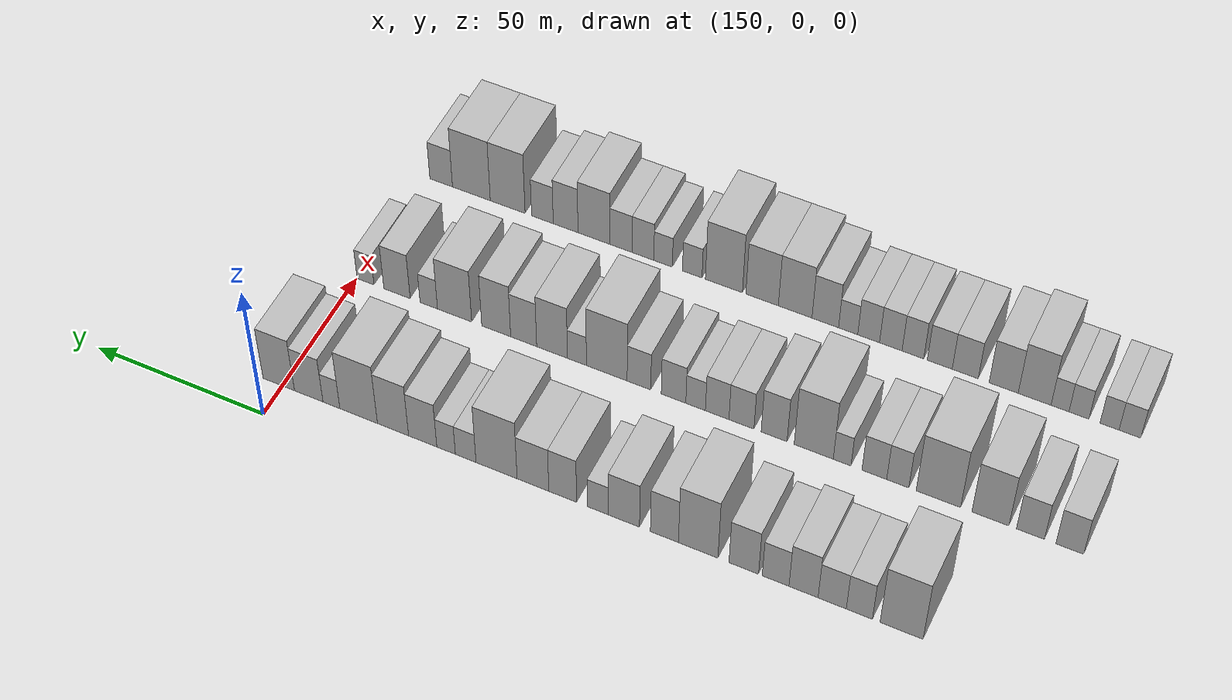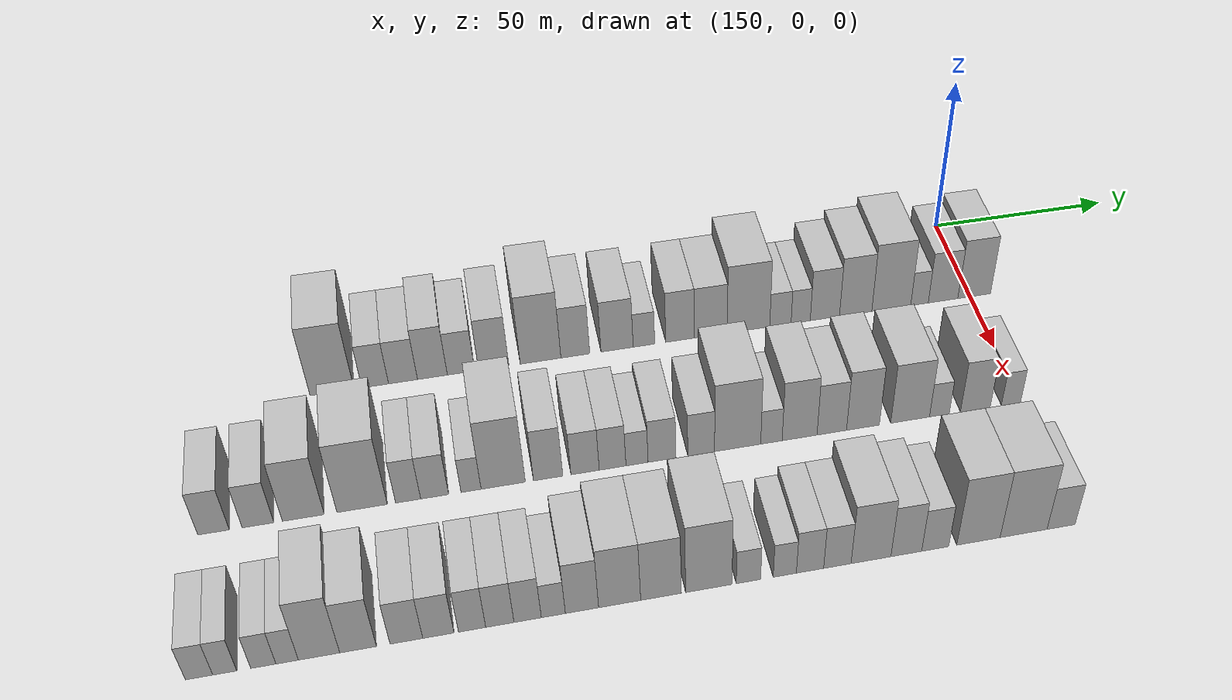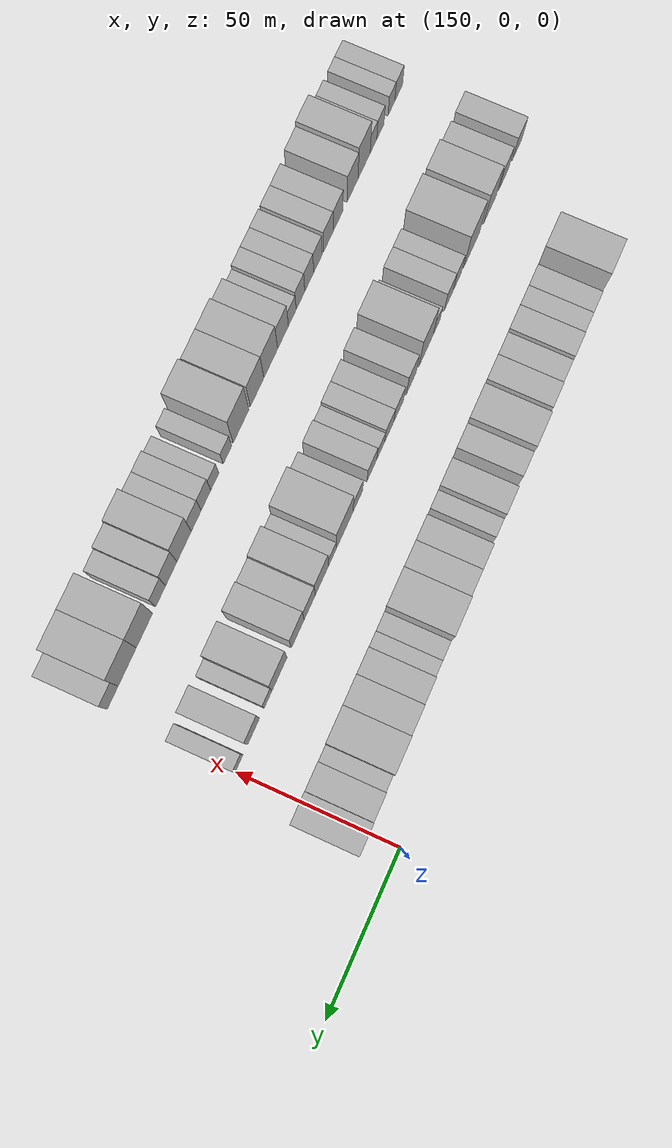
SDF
<sdf version="1.6">
 <world name="default">
  <model name="building_453">
   <static>1</static>
   <pose>170.0000 -172.9521 0 0.000000 0.000000 0.000000</pose>
   <link name="link">
    <pose>0 0 12.00 0 0 0</pose>
    <collision name="collision"><geometry><box><size>20.0000 11.2089 24.0000</size></box></geometry></collision>
    <visual name="visual">
     <cast_shadows>0</cast_shadows>
     <geometry><box><size>20.0000 11.2089 24.0000</size></box></geometry>
     <material>
      <script>
       <uri>model://HANNAS_wall/materials/scripts</uri>
       <uri>model://HANNAS_wall/materials/textures</uri>
       <name>vrc/HANNAS_wall</name>
      </script>
     </material>
    </visual>
   </link>
  </model>
  <model name="building_454">
   <static>1</static>
   <pose>170.0000 -161.9113 0 0.000000 0.000000 0.000000</pose>
   <link name="link">
    <pose>0 0 7.50 0 0 0</pose>
    <collision name="collision"><geometry><box><size>20.0000 6.8727 15.0000</size></box></geometry></collision>
    <visual name="visual">
     <cast_shadows>0</cast_shadows>
     <geometry><box><size>20.0000 6.8727 15.0000</size></box></geometry>
     <material>
      <script>
       <uri>model://HANNAS_wall/materials/scripts</uri>
       <uri>model://HANNAS_wall/materials/textures</uri>
       <name>vrc/HANNAS_wall</name>
      </script>
     </material>
    </visual>
   </link>
  </model>
  <model name="building_455">
   <static>1</static>
   <pose>170.0000 -154.7387 0 0.000000 0.000000 0.000000</pose>
   <link name="link">
    <pose>0 0 7.50 0 0 0</pose>
    <collision name="collision"><geometry><box><size>20.0000 7.4725 15.0000</size></box></geometry></collision>
    <visual name="visual">
     <cast_shadows>0</cast_shadows>
     <geometry><box><size>20.0000 7.4725 15.0000</size></box></geometry>
     <material>
      <script>
       <uri>model://HANNAS_wall/materials/scripts</uri>
       <uri>model://HANNAS_wall/materials/textures</uri>
       <name>vrc/HANNAS_wall</name>
      </script>
     </material>
    </visual>
   </link>
  </model>
  <model name="building_456">
   <static>1</static>
   <pose>170.0000 -147.1284 0 0.000000 0.000000 0.000000</pose>
   <link name="link">
    <pose>0 0 9.00 0 0 0</pose>
    <collision name="collision"><geometry><box><size>20.0000 7.7482 18.0000</size></box></geometry></collision>
    <visual name="visual">
     <cast_shadows>0</cast_shadows>
     <geometry><box><size>20.0000 7.7482 18.0000</size></box></geometry>
     <material>
      <script>
       <uri>model://HANNAS_wall/materials/scripts</uri>
       <uri>model://HANNAS_wall/materials/textures</uri>
       <name>vrc/HANNAS_wall</name>
      </script>
     </material>
    </visual>
   </link>
  </model>
  <model name="building_457">
   <static>1</static>
   <pose>170.0000 -139.6732 0 0.000000 0.000000 0.000000</pose>
   <link name="link">
    <pose>0 0 7.50 0 0 0</pose>
    <collision name="collision"><geometry><box><size>20.0000 7.1622 15.0000</size></box></geometry></collision>
    <visual name="visual">
     <cast_shadows>0</cast_shadows>
     <geometry><box><size>20.0000 7.1622 15.0000</size></box></geometry>
     <material>
      <script>
       <uri>model://HANNAS_wall/materials/scripts</uri>
       <uri>model://HANNAS_wall/materials/textures</uri>
       <name>vrc/HANNAS_wall</name>
      </script>
     </material>
    </visual>
   </link>
  </model>
  <model name="building_458">
   <static>1</static>
   <pose>170.0000 -131.1093 0 0.000000 0.000000 0.000000</pose>
   <link name="link">
    <pose>0 0 9.00 0 0 0</pose>
    <collision name="collision"><geometry><box><size>20.0000 7.9656 18.0000</size></box></geometry></collision>
    <visual name="visual">
     <cast_shadows>0</cast_shadows>
     <geometry><box><size>20.0000 7.9656 18.0000</size></box></geometry>
     <material>
      <script>
       <uri>model://HANNAS_wall/materials/scripts</uri>
       <uri>model://HANNAS_wall/materials/textures</uri>
       <name>vrc/HANNAS_wall</name>
      </script>
     </material>
    </visual>
   </link>
  </model>
  <model name="building_459">
   <static>1</static>
   <pose>170.0000 -118.7372 0 0.000000 0.000000 0.000000</pose>
   <link name="link">
    <pose>0 0 12.00 0 0 0</pose>
    <collision name="collision"><geometry><box><size>20.0000 10.7786 24.0000</size></box></geometry></collision>
    <visual name="visual">
     <cast_shadows>0</cast_shadows>
     <geometry><box><size>20.0000 10.7786 24.0000</size></box></geometry>
     <material>
      <script>
       <uri>model://HANNAS_wall/materials/scripts</uri>
       <uri>model://HANNAS_wall/materials/textures</uri>
       <name>vrc/HANNAS_wall</name>
      </script>
     </material>
    </visual>
   </link>
  </model>
  <model name="building_460">
   <static>1</static>
   <pose>170.0000 -109.4995 0 0.000000 0.000000 0.000000</pose>
   <link name="link">
    <pose>0 0 9.00 0 0 0</pose>
    <collision name="collision"><geometry><box><size>20.0000 7.6968 18.0000</size></box></geometry></collision>
    <visual name="visual">
     <cast_shadows>0</cast_shadows>
     <geometry><box><size>20.0000 7.6968 18.0000</size></box></geometry>
     <material>
      <script>
       <uri>model://HANNAS_wall/materials/scripts</uri>
       <uri>model://HANNAS_wall/materials/textures</uri>
       <name>vrc/HANNAS_wall</name>
      </script>
     </material>
    </visual>
   </link>
  </model>
  <model name="building_461">
   <static>1</static>
   <pose>170.0000 -98.3175 0 0.000000 0.000000 0.000000</pose>
   <link name="link">
    <pose>0 0 9.00 0 0 0</pose>
    <collision name="collision"><geometry><box><size>20.0000 8.6673 18.0000</size></box></geometry></collision>
    <visual name="visual">
     <cast_shadows>0</cast_shadows>
     <geometry><box><size>20.0000 8.6673 18.0000</size></box></geometry>
     <material>
      <script>
       <uri>model://HANNAS_wall/materials/scripts</uri>
       <uri>model://HANNAS_wall/materials/textures</uri>
       <name>vrc/HANNAS_wall</name>
      </script>
     </material>
    </visual>
   </link>
  </model>
  <model name="building_462">
   <static>1</static>
   <pose>170.0000 -91.0740 0 0.000000 0.000000 0.000000</pose>
   <link name="link">
    <pose>0 0 6.00 0 0 0</pose>
    <collision name="collision"><geometry><box><size>20.0000 5.8197 12.0000</size></box></geometry></collision>
    <visual name="visual">
     <cast_shadows>0</cast_shadows>
     <geometry><box><size>20.0000 5.8197 12.0000</size></box></geometry>
     <material>
      <script>
       <uri>model://HANNAS_wall/materials/scripts</uri>
       <uri>model://HANNAS_wall/materials/textures</uri>
       <name>vrc/HANNAS_wall</name>
      </script>
     </material>
    </visual>
   </link>
  </model>
  <model name="building_463">
   <static>1</static>
   <pose>170.0000 -81.2610 0 0.000000 0.000000 0.000000</pose>
   <link name="link">
    <pose>0 0 9.00 0 0 0</pose>
    <collision name="collision"><geometry><box><size>20.0000 7.8064 18.0000</size></box></geometry></collision>
    <visual name="visual">
     <cast_shadows>0</cast_shadows>
     <geometry><box><size>20.0000 7.8064 18.0000</size></box></geometry>
     <material>
      <script>
       <uri>model://HANNAS_wall/materials/scripts</uri>
       <uri>model://HANNAS_wall/materials/textures</uri>
       <name>vrc/HANNAS_wall</name>
      </script>
     </material>
    </visual>
   </link>
  </model>
  <model name="building_464">
   <static>1</static>
   <pose>170.0000 -72.8683 0 0.000000 0.000000 0.000000</pose>
   <link name="link">
    <pose>0 0 9.00 0 0 0</pose>
    <collision name="collision"><geometry><box><size>20.0000 8.9790 18.0000</size></box></geometry></collision>
    <visual name="visual">
     <cast_shadows>0</cast_shadows>
     <geometry><box><size>20.0000 8.9790 18.0000</size></box></geometry>
     <material>
      <script>
       <uri>model://HANNAS_wall/materials/scripts</uri>
       <uri>model://HANNAS_wall/materials/textures</uri>
       <name>vrc/HANNAS_wall</name>
      </script>
     </material>
    </visual>
   </link>
  </model>
  <model name="building_465">
   <static>1</static>
   <pose>170.0000 -62.5123 0 0.000000 0.000000 0.000000</pose>
   <link name="link">
    <pose>0 0 12.00 0 0 0</pose>
    <collision name="collision"><geometry><box><size>20.0000 11.7331 24.0000</size></box></geometry></collision>
    <visual name="visual">
     <cast_shadows>0</cast_shadows>
     <geometry><box><size>20.0000 11.7331 24.0000</size></box></geometry>
     <material>
      <script>
       <uri>model://HANNAS_wall/materials/scripts</uri>
       <uri>model://HANNAS_wall/materials/textures</uri>
       <name>vrc/HANNAS_wall</name>
      </script>
     </material>
    </visual>
   </link>
  </model>
  <model name="building_466">
   <static>1</static>
   <pose>170.0000 -53.6849 0 0.000000 0.000000 0.000000</pose>
   <link name="link">
    <pose>0 0 6.00 0 0 0</pose>
    <collision name="collision"><geometry><box><size>20.0000 5.9217 12.0000</size></box></geometry></collision>
    <visual name="visual">
     <cast_shadows>0</cast_shadows>
     <geometry><box><size>20.0000 5.9217 12.0000</size></box></geometry>
     <material>
      <script>
       <uri>model://HANNAS_wall/materials/scripts</uri>
       <uri>model://HANNAS_wall/materials/textures</uri>
       <name>vrc/HANNAS_wall</name>
      </script>
     </material>
    </visual>
   </link>
  </model>
  <model name="building_467">
   <static>1</static>
   <pose>170.0000 -48.0506 0 0.000000 0.000000 0.000000</pose>
   <link name="link">
    <pose>0 0 6.00 0 0 0</pose>
    <collision name="collision"><geometry><box><size>20.0000 5.3470 12.0000</size></box></geometry></collision>
    <visual name="visual">
     <cast_shadows>0</cast_shadows>
     <geometry><box><size>20.0000 5.3470 12.0000</size></box></geometry>
     <material>
      <script>
       <uri>model://HANNAS_wall/materials/scripts</uri>
       <uri>model://HANNAS_wall/materials/textures</uri>
       <name>vrc/HANNAS_wall</name>
      </script>
     </material>
    </visual>
   </link>
  </model>
  <model name="building_468">
   <static>1</static>
   <pose>170.0000 -41.2796 0 0.000000 0.000000 0.000000</pose>
   <link name="link">
    <pose>0 0 9.00 0 0 0</pose>
    <collision name="collision"><geometry><box><size>20.0000 8.1951 18.0000</size></box></geometry></collision>
    <visual name="visual">
     <cast_shadows>0</cast_shadows>
     <geometry><box><size>20.0000 8.1951 18.0000</size></box></geometry>
     <material>
      <script>
       <uri>model://HANNAS_wall/materials/scripts</uri>
       <uri>model://HANNAS_wall/materials/textures</uri>
       <name>vrc/HANNAS_wall</name>
      </script>
     </material>
    </visual>
   </link>
  </model>
  <model name="building_469">
   <static>1</static>
   <pose>170.0000 -32.6283 0 0.000000 0.000000 0.000000</pose>
   <link name="link">
    <pose>0 0 10.50 0 0 0</pose>
    <collision name="collision"><geometry><box><size>20.0000 9.1075 21.0000</size></box></geometry></collision>
    <visual name="visual">
     <cast_shadows>0</cast_shadows>
     <geometry><box><size>20.0000 9.1075 21.0000</size></box></geometry>
     <material>
      <script>
       <uri>model://HANNAS_wall/materials/scripts</uri>
       <uri>model://HANNAS_wall/materials/textures</uri>
       <name>vrc/HANNAS_wall</name>
      </script>
     </material>
    </visual>
   </link>
  </model>
  <model name="building_470">
   <static>1</static>
   <pose>170.0000 -22.5432 0 0.000000 0.000000 0.000000</pose>
   <link name="link">
    <pose>0 0 12.00 0 0 0</pose>
    <collision name="collision"><geometry><box><size>20.0000 11.0627 24.0000</size></box></geometry></collision>
    <visual name="visual">
     <cast_shadows>0</cast_shadows>
     <geometry><box><size>20.0000 11.0627 24.0000</size></box></geometry>
     <material>
      <script>
       <uri>model://HANNAS_wall/materials/scripts</uri>
       <uri>model://HANNAS_wall/materials/textures</uri>
       <name>vrc/HANNAS_wall</name>
      </script>
     </material>
    </visual>
   </link>
  </model>
  <model name="building_471">
   <static>1</static>
   <pose>170.0000 -14.5097 0 0.000000 0.000000 0.000000</pose>
   <link name="link">
    <pose>0 0 6.00 0 0 0</pose>
    <collision name="collision"><geometry><box><size>20.0000 5.0042 12.0000</size></box></geometry></collision>
    <visual name="visual">
     <cast_shadows>0</cast_shadows>
     <geometry><box><size>20.0000 5.0042 12.0000</size></box></geometry>
     <material>
      <script>
       <uri>model://HANNAS_wall/materials/scripts</uri>
       <uri>model://HANNAS_wall/materials/textures</uri>
       <name>vrc/HANNAS_wall</name>
      </script>
     </material>
    </visual>
   </link>
  </model>
  <model name="building_472">
   <static>1</static>
   <pose>170.0000 -7.7640 0 0.000000 0.000000 0.000000</pose>
   <link name="link">
    <pose>0 0 9.00 0 0 0</pose>
    <collision name="collision"><geometry><box><size>20.0000 8.4873 18.0000</size></box></geometry></collision>
    <visual name="visual">
     <cast_shadows>0</cast_shadows>
     <geometry><box><size>20.0000 8.4873 18.0000</size></box></geometry>
     <material>
      <script>
       <uri>model://HANNAS_wall/materials/scripts</uri>
       <uri>model://HANNAS_wall/materials/textures</uri>
       <name>vrc/HANNAS_wall</name>
      </script>
     </material>
    </visual>
   </link>
  </model>
  <model name="building_473">
   <static>1</static>
   <pose>170.0000 1.1938 0 0.000000 0.000000 0.000000</pose>
   <link name="link">
    <pose>0 0 10.50 0 0 0</pose>
    <collision name="collision"><geometry><box><size>20.0000 9.4282 21.0000</size></box></geometry></collision>
    <visual name="visual">
     <cast_shadows>0</cast_shadows>
     <geometry><box><size>20.0000 9.4282 21.0000</size></box></geometry>
     <material>
      <script>
       <uri>model://HANNAS_wall/materials/scripts</uri>
       <uri>model://HANNAS_wall/materials/textures</uri>
       <name>vrc/HANNAS_wall</name>
      </script>
     </material>
    </visual>
   </link>
  </model>
  <model name="building_594">
   <static>1</static>
   <pose>210.0000 -202.1184 0 0.000000 0.000000 0.000000</pose>
   <link name="link">
    <pose>0 0 7.50 0 0 0</pose>
    <collision name="collision"><geometry><box><size>20.0000 7.3005 15.0000</size></box></geometry></collision>
    <visual name="visual">
     <cast_shadows>0</cast_shadows>
     <geometry><box><size>20.0000 7.3005 15.0000</size></box></geometry>
     <material>
      <script>
       <uri>model://HANNAS_wall/materials/scripts</uri>
       <uri>model://HANNAS_wall/materials/textures</uri>
       <name>vrc/HANNAS_wall</name>
      </script>
     </material>
    </visual>
   </link>
  </model>
  <model name="building_595">
   <static>1</static>
   <pose>210.0000 -191.7721 0 0.000000 0.000000 0.000000</pose>
   <link name="link">
    <pose>0 0 7.50 0 0 0</pose>
    <collision name="collision"><geometry><box><size>20.0000 7.3922 15.0000</size></box></geometry></collision>
    <visual name="visual">
     <cast_shadows>0</cast_shadows>
     <geometry><box><size>20.0000 7.3922 15.0000</size></box></geometry>
     <material>
      <script>
       <uri>model://HANNAS_wall/materials/scripts</uri>
       <uri>model://HANNAS_wall/materials/textures</uri>
       <name>vrc/HANNAS_wall</name>
      </script>
     </material>
    </visual>
   </link>
  </model>
  <model name="building_596">
   <static>1</static>
   <pose>210.0000 -181.1423 0 0.000000 0.000000 0.000000</pose>
   <link name="link">
    <pose>0 0 10.50 0 0 0</pose>
    <collision name="collision"><geometry><box><size>20.0000 9.8674 21.0000</size></box></geometry></collision>
    <visual name="visual">
     <cast_shadows>0</cast_shadows>
     <geometry><box><size>20.0000 9.8674 21.0000</size></box></geometry>
     <material>
      <script>
       <uri>model://HANNAS_wall/materials/scripts</uri>
       <uri>model://HANNAS_wall/materials/textures</uri>
       <name>vrc/HANNAS_wall</name>
      </script>
     </material>
    </visual>
   </link>
  </model>
  <model name="building_597">
   <static>1</static>
   <pose>210.0000 -167.2183 0 0.000000 0.000000 0.000000</pose>
   <link name="link">
    <pose>0 0 12.00 0 0 0</pose>
    <collision name="collision"><geometry><box><size>20.0000 11.9806 24.0000</size></box></geometry></collision>
    <visual name="visual">
     <cast_shadows>0</cast_shadows>
     <geometry><box><size>20.0000 11.9806 24.0000</size></box></geometry>
     <material>
      <script>
       <uri>model://HANNAS_wall/materials/scripts</uri>
       <uri>model://HANNAS_wall/materials/textures</uri>
       <name>vrc/HANNAS_wall</name>
      </script>
     </material>
    </visual>
   </link>
  </model>
  <model name="building_598">
   <static>1</static>
   <pose>210.0000 -156.2194 0 0.000000 0.000000 0.000000</pose>
   <link name="link">
    <pose>0 0 7.50 0 0 0</pose>
    <collision name="collision"><geometry><box><size>20.0000 6.0172 15.0000</size></box></geometry></collision>
    <visual name="visual">
     <cast_shadows>0</cast_shadows>
     <geometry><box><size>20.0000 6.0172 15.0000</size></box></geometry>
     <material>
      <script>
       <uri>model://HANNAS_wall/materials/scripts</uri>
       <uri>model://HANNAS_wall/materials/textures</uri>
       <name>vrc/HANNAS_wall</name>
      </script>
     </material>
    </visual>
   </link>
  </model>
  <model name="building_599">
   <static>1</static>
   <pose>210.0000 -149.8347 0 0.000000 0.000000 0.000000</pose>
   <link name="link">
    <pose>0 0 7.50 0 0 0</pose>
    <collision name="collision"><geometry><box><size>20.0000 6.7522 15.0000</size></box></geometry></collision>
    <visual name="visual">
     <cast_shadows>0</cast_shadows>
     <geometry><box><size>20.0000 6.7522 15.0000</size></box></geometry>
     <material>
      <script>
       <uri>model://HANNAS_wall/materials/scripts</uri>
       <uri>model://HANNAS_wall/materials/textures</uri>
       <name>vrc/HANNAS_wall</name>
      </script>
     </material>
    </visual>
   </link>
  </model>
  <model name="building_600">
   <static>1</static>
   <pose>210.0000 -141.0162 0 0.000000 0.000000 0.000000</pose>
   <link name="link">
    <pose>0 0 6.00 0 0 0</pose>
    <collision name="collision"><geometry><box><size>20.0000 4.8847 12.0000</size></box></geometry></collision>
    <visual name="visual">
     <cast_shadows>0</cast_shadows>
     <geometry><box><size>20.0000 4.8847 12.0000</size></box></geometry>
     <material>
      <script>
       <uri>model://HANNAS_wall/materials/scripts</uri>
       <uri>model://HANNAS_wall/materials/textures</uri>
       <name>vrc/HANNAS_wall</name>
      </script>
     </material>
    </visual>
   </link>
  </model>
  <model name="building_601">
   <static>1</static>
   <pose>210.0000 -133.1641 0 0.000000 0.000000 0.000000</pose>
   <link name="link">
    <pose>0 0 12.00 0 0 0</pose>
    <collision name="collision"><geometry><box><size>20.0000 10.8196 24.0000</size></box></geometry></collision>
    <visual name="visual">
     <cast_shadows>0</cast_shadows>
     <geometry><box><size>20.0000 10.8196 24.0000</size></box></geometry>
     <material>
      <script>
       <uri>model://HANNAS_wall/materials/scripts</uri>
       <uri>model://HANNAS_wall/materials/textures</uri>
       <name>vrc/HANNAS_wall</name>
      </script>
     </material>
    </visual>
   </link>
  </model>
  <model name="building_602">
   <static>1</static>
   <pose>210.0000 -122.1366 0 0.000000 0.000000 0.000000</pose>
   <link name="link">
    <pose>0 0 9.00 0 0 0</pose>
    <collision name="collision"><geometry><box><size>20.0000 7.2354 18.0000</size></box></geometry></collision>
    <visual name="visual">
     <cast_shadows>0</cast_shadows>
     <geometry><box><size>20.0000 7.2354 18.0000</size></box></geometry>
     <material>
      <script>
       <uri>model://HANNAS_wall/materials/scripts</uri>
       <uri>model://HANNAS_wall/materials/textures</uri>
       <name>vrc/HANNAS_wall</name>
      </script>
     </material>
    </visual>
   </link>
  </model>
  <model name="building_603">
   <static>1</static>
   <pose>210.0000 -113.0004 0 0.000000 0.000000 0.000000</pose>
   <link name="link">
    <pose>0 0 7.50 0 0 0</pose>
    <collision name="collision"><geometry><box><size>20.0000 7.0370 15.0000</size></box></geometry></collision>
    <visual name="visual">
     <cast_shadows>0</cast_shadows>
     <geometry><box><size>20.0000 7.0370 15.0000</size></box></geometry>
     <material>
      <script>
       <uri>model://HANNAS_wall/materials/scripts</uri>
       <uri>model://HANNAS_wall/materials/textures</uri>
       <name>vrc/HANNAS_wall</name>
      </script>
     </material>
    </visual>
   </link>
  </model>
  <model name="building_604">
   <static>1</static>
   <pose>210.0000 -106.1474 0 0.000000 0.000000 0.000000</pose>
   <link name="link">
    <pose>0 0 7.50 0 0 0</pose>
    <collision name="collision"><geometry><box><size>20.0000 6.6692 15.0000</size></box></geometry></collision>
    <visual name="visual">
     <cast_shadows>0</cast_shadows>
     <geometry><box><size>20.0000 6.6692 15.0000</size></box></geometry>
     <material>
      <script>
       <uri>model://HANNAS_wall/materials/scripts</uri>
       <uri>model://HANNAS_wall/materials/textures</uri>
       <name>vrc/HANNAS_wall</name>
      </script>
     </material>
    </visual>
   </link>
  </model>
  <model name="building_605">
   <static>1</static>
   <pose>210.0000 -100.0345 0 0.000000 0.000000 0.000000</pose>
   <link name="link">
    <pose>0 0 6.00 0 0 0</pose>
    <collision name="collision"><geometry><box><size>20.0000 5.5565 12.0000</size></box></geometry></collision>
    <visual name="visual">
     <cast_shadows>0</cast_shadows>
     <geometry><box><size>20.0000 5.5565 12.0000</size></box></geometry>
     <material>
      <script>
       <uri>model://HANNAS_wall/materials/scripts</uri>
       <uri>model://HANNAS_wall/materials/textures</uri>
       <name>vrc/HANNAS_wall</name>
      </script>
     </material>
    </visual>
   </link>
  </model>
  <model name="building_606">
   <static>1</static>
   <pose>210.0000 -93.7426 0 0.000000 0.000000 0.000000</pose>
   <link name="link">
    <pose>0 0 7.50 0 0 0</pose>
    <collision name="collision"><geometry><box><size>20.0000 7.0271 15.0000</size></box></geometry></collision>
    <visual name="visual">
     <cast_shadows>0</cast_shadows>
     <geometry><box><size>20.0000 7.0271 15.0000</size></box></geometry>
     <material>
      <script>
       <uri>model://HANNAS_wall/materials/scripts</uri>
       <uri>model://HANNAS_wall/materials/textures</uri>
       <name>vrc/HANNAS_wall</name>
      </script>
     </material>
    </visual>
   </link>
  </model>
  <model name="building_607">
   <static>1</static>
   <pose>210.0000 -83.8296 0 0.000000 0.000000 0.000000</pose>
   <link name="link">
    <pose>0 0 7.50 0 0 0</pose>
    <collision name="collision"><geometry><box><size>20.0000 6.7990 15.0000</size></box></geometry></collision>
    <visual name="visual">
     <cast_shadows>0</cast_shadows>
     <geometry><box><size>20.0000 6.7990 15.0000</size></box></geometry>
     <material>
      <script>
       <uri>model://HANNAS_wall/materials/scripts</uri>
       <uri>model://HANNAS_wall/materials/textures</uri>
       <name>vrc/HANNAS_wall</name>
      </script>
     </material>
    </visual>
   </link>
  </model>
  <model name="building_608">
   <static>1</static>
   <pose>210.0000 -74.5330 0 0.000000 0.000000 0.000000</pose>
   <link name="link">
    <pose>0 0 12.00 0 0 0</pose>
    <collision name="collision"><geometry><box><size>20.0000 11.7941 24.0000</size></box></geometry></collision>
    <visual name="visual">
     <cast_shadows>0</cast_shadows>
     <geometry><box><size>20.0000 11.7941 24.0000</size></box></geometry>
     <material>
      <script>
       <uri>model://HANNAS_wall/materials/scripts</uri>
       <uri>model://HANNAS_wall/materials/textures</uri>
       <name>vrc/HANNAS_wall</name>
      </script>
     </material>
    </visual>
   </link>
  </model>
  <model name="building_609">
   <static>1</static>
   <pose>210.0000 -65.8726 0 0.000000 0.000000 0.000000</pose>
   <link name="link">
    <pose>0 0 6.00 0 0 0</pose>
    <collision name="collision"><geometry><box><size>20.0000 5.5268 12.0000</size></box></geometry></collision>
    <visual name="visual">
     <cast_shadows>0</cast_shadows>
     <geometry><box><size>20.0000 5.5268 12.0000</size></box></geometry>
     <material>
      <script>
       <uri>model://HANNAS_wall/materials/scripts</uri>
       <uri>model://HANNAS_wall/materials/textures</uri>
       <name>vrc/HANNAS_wall</name>
      </script>
     </material>
    </visual>
   </link>
  </model>
  <model name="building_610">
   <static>1</static>
   <pose>210.0000 -58.5884 0 0.000000 0.000000 0.000000</pose>
   <link name="link">
    <pose>0 0 10.50 0 0 0</pose>
    <collision name="collision"><geometry><box><size>20.0000 9.0417 21.0000</size></box></geometry></collision>
    <visual name="visual">
     <cast_shadows>0</cast_shadows>
     <geometry><box><size>20.0000 9.0417 21.0000</size></box></geometry>
     <material>
      <script>
       <uri>model://HANNAS_wall/materials/scripts</uri>
       <uri>model://HANNAS_wall/materials/textures</uri>
       <name>vrc/HANNAS_wall</name>
      </script>
     </material>
    </visual>
   </link>
  </model>
  <model name="building_611">
   <static>1</static>
   <pose>210.0000 -50.2196 0 0.000000 0.000000 0.000000</pose>
   <link name="link">
    <pose>0 0 9.00 0 0 0</pose>
    <collision name="collision"><geometry><box><size>20.0000 7.6959 18.0000</size></box></geometry></collision>
    <visual name="visual">
     <cast_shadows>0</cast_shadows>
     <geometry><box><size>20.0000 7.6959 18.0000</size></box></geometry>
     <material>
      <script>
       <uri>model://HANNAS_wall/materials/scripts</uri>
       <uri>model://HANNAS_wall/materials/textures</uri>
       <name>vrc/HANNAS_wall</name>
      </script>
     </material>
    </visual>
   </link>
  </model>
  <model name="building_612">
   <static>1</static>
   <pose>210.0000 -42.0685 0 0.000000 0.000000 0.000000</pose>
   <link name="link">
    <pose>0 0 10.50 0 0 0</pose>
    <collision name="collision"><geometry><box><size>20.0000 8.6064 21.0000</size></box></geometry></collision>
    <visual name="visual">
     <cast_shadows>0</cast_shadows>
     <geometry><box><size>20.0000 8.6064 21.0000</size></box></geometry>
     <material>
      <script>
       <uri>model://HANNAS_wall/materials/scripts</uri>
       <uri>model://HANNAS_wall/materials/textures</uri>
       <name>vrc/HANNAS_wall</name>
      </script>
     </material>
    </visual>
   </link>
  </model>
  <model name="building_613">
   <static>1</static>
   <pose>210.0000 -29.6342 0 0.000000 0.000000 0.000000</pose>
   <link name="link">
    <pose>0 0 10.50 0 0 0</pose>
    <collision name="collision"><geometry><box><size>20.0000 10.2623 21.0000</size></box></geometry></collision>
    <visual name="visual">
     <cast_shadows>0</cast_shadows>
     <geometry><box><size>20.0000 10.2623 21.0000</size></box></geometry>
     <material>
      <script>
       <uri>model://HANNAS_wall/materials/scripts</uri>
       <uri>model://HANNAS_wall/materials/textures</uri>
       <name>vrc/HANNAS_wall</name>
      </script>
     </material>
    </visual>
   </link>
  </model>
  <model name="building_614">
   <static>1</static>
   <pose>210.0000 -21.8707 0 0.000000 0.000000 0.000000</pose>
   <link name="link">
    <pose>0 0 6.00 0 0 0</pose>
    <collision name="collision"><geometry><box><size>20.0000 5.2645 12.0000</size></box></geometry></collision>
    <visual name="visual">
     <cast_shadows>0</cast_shadows>
     <geometry><box><size>20.0000 5.2645 12.0000</size></box></geometry>
     <material>
      <script>
       <uri>model://HANNAS_wall/materials/scripts</uri>
       <uri>model://HANNAS_wall/materials/textures</uri>
       <name>vrc/HANNAS_wall</name>
      </script>
     </material>
    </visual>
   </link>
  </model>
  <model name="building_615">
   <static>1</static>
   <pose>210.0000 -12.2380 0 0.000000 0.000000 0.000000</pose>
   <link name="link">
    <pose>0 0 9.00 0 0 0</pose>
    <collision name="collision"><geometry><box><size>20.0000 8.0008 18.0000</size></box></geometry></collision>
    <visual name="visual">
     <cast_shadows>0</cast_shadows>
     <geometry><box><size>20.0000 8.0008 18.0000</size></box></geometry>
     <material>
      <script>
       <uri>model://HANNAS_wall/materials/scripts</uri>
       <uri>model://HANNAS_wall/materials/textures</uri>
       <name>vrc/HANNAS_wall</name>
      </script>
     </material>
    </visual>
   </link>
  </model>
  <model name="building_616">
   <static>1</static>
   <pose>210.0000 -2.6437 0 0.000000 0.000000 0.000000</pose>
   <link name="link">
    <pose>0 0 6.00 0 0 0</pose>
    <collision name="collision"><geometry><box><size>20.0000 5.1878 12.0000</size></box></geometry></collision>
    <visual name="visual">
     <cast_shadows>0</cast_shadows>
     <geometry><box><size>20.0000 5.1878 12.0000</size></box></geometry>
     <material>
      <script>
       <uri>model://HANNAS_wall/materials/scripts</uri>
       <uri>model://HANNAS_wall/materials/textures</uri>
       <name>vrc/HANNAS_wall</name>
      </script>
     </material>
    </visual>
   </link>
  </model>
  <model name="building_733">
   <static>1</static>
   <pose>250.0000 -204.5061 0 0.000000 0.000000 0.000000</pose>
   <link name="link">
    <pose>0 0 6.00 0 0 0</pose>
    <collision name="collision"><geometry><box><size>20.0000 5.8522 12.0000</size></box></geometry></collision>
    <visual name="visual">
     <cast_shadows>0</cast_shadows>
     <geometry><box><size>20.0000 5.8522 12.0000</size></box></geometry>
     <material>
      <script>
       <uri>model://HANNAS_wall/materials/scripts</uri>
       <uri>model://HANNAS_wall/materials/textures</uri>
       <name>vrc/HANNAS_wall</name>
      </script>
     </material>
    </visual>
   </link>
  </model>
  <model name="building_734">
   <static>1</static>
   <pose>250.0000 -199.0081 0 0.000000 0.000000 0.000000</pose>
   <link name="link">
    <pose>0 0 6.00 0 0 0</pose>
    <collision name="collision"><geometry><box><size>20.0000 5.1439 12.0000</size></box></geometry></collision>
    <visual name="visual">
     <cast_shadows>0</cast_shadows>
     <geometry><box><size>20.0000 5.1439 12.0000</size></box></geometry>
     <material>
      <script>
       <uri>model://HANNAS_wall/materials/scripts</uri>
       <uri>model://HANNAS_wall/materials/textures</uri>
       <name>vrc/HANNAS_wall</name>
      </script>
     </material>
    </visual>
   </link>
  </model>
  <model name="building_735">
   <static>1</static>
   <pose>250.0000 -190.7227 0 0.000000 0.000000 0.000000</pose>
   <link name="link">
    <pose>0 0 6.00 0 0 0</pose>
    <collision name="collision"><geometry><box><size>20.0000 5.4269 12.0000</size></box></geometry></collision>
    <visual name="visual">
     <cast_shadows>0</cast_shadows>
     <geometry><box><size>20.0000 5.4269 12.0000</size></box></geometry>
     <material>
      <script>
       <uri>model://HANNAS_wall/materials/scripts</uri>
       <uri>model://HANNAS_wall/materials/textures</uri>
       <name>vrc/HANNAS_wall</name>
      </script>
     </material>
    </visual>
   </link>
  </model>
  <model name="building_736">
   <static>1</static>
   <pose>250.0000 -185.5680 0 0.000000 0.000000 0.000000</pose>
   <link name="link">
    <pose>0 0 6.00 0 0 0</pose>
    <collision name="collision"><geometry><box><size>20.0000 4.8824 12.0000</size></box></geometry></collision>
    <visual name="visual">
     <cast_shadows>0</cast_shadows>
     <geometry><box><size>20.0000 4.8824 12.0000</size></box></geometry>
     <material>
      <script>
       <uri>model://HANNAS_wall/materials/scripts</uri>
       <uri>model://HANNAS_wall/materials/textures</uri>
       <name>vrc/HANNAS_wall</name>
      </script>
     </material>
    </visual>
   </link>
  </model>
  <model name="building_737">
   <static>1</static>
   <pose>250.0000 -178.6114 0 0.000000 0.000000 0.000000</pose>
   <link name="link">
    <pose>0 0 10.50 0 0 0</pose>
    <collision name="collision"><geometry><box><size>20.0000 9.0307 21.0000</size></box></geometry></collision>
    <visual name="visual">
     <cast_shadows>0</cast_shadows>
     <geometry><box><size>20.0000 9.0307 21.0000</size></box></geometry>
     <material>
      <script>
       <uri>model://HANNAS_wall/materials/scripts</uri>
       <uri>model://HANNAS_wall/materials/textures</uri>
       <name>vrc/HANNAS_wall</name>
      </script>
     </material>
    </visual>
   </link>
  </model>
  <model name="building_738">
   <static>1</static>
   <pose>250.0000 -170.0705 0 0.000000 0.000000 0.000000</pose>
   <link name="link">
    <pose>0 0 9.00 0 0 0</pose>
    <collision name="collision"><geometry><box><size>20.0000 8.0512 18.0000</size></box></geometry></collision>
    <visual name="visual">
     <cast_shadows>0</cast_shadows>
     <geometry><box><size>20.0000 8.0512 18.0000</size></box></geometry>
     <material>
      <script>
       <uri>model://HANNAS_wall/materials/scripts</uri>
       <uri>model://HANNAS_wall/materials/textures</uri>
       <name>vrc/HANNAS_wall</name>
      </script>
     </material>
    </visual>
   </link>
  </model>
  <model name="building_739">
   <static>1</static>
   <pose>250.0000 -159.4151 0 0.000000 0.000000 0.000000</pose>
   <link name="link">
    <pose>0 0 7.50 0 0 0</pose>
    <collision name="collision"><geometry><box><size>20.0000 7.2597 15.0000</size></box></geometry></collision>
    <visual name="visual">
     <cast_shadows>0</cast_shadows>
     <geometry><box><size>20.0000 7.2597 15.0000</size></box></geometry>
     <material>
      <script>
       <uri>model://HANNAS_wall/materials/scripts</uri>
       <uri>model://HANNAS_wall/materials/textures</uri>
       <name>vrc/HANNAS_wall</name>
      </script>
     </material>
    </visual>
   </link>
  </model>
  <model name="building_740">
   <static>1</static>
   <pose>250.0000 -152.2940 0 0.000000 0.000000 0.000000</pose>
   <link name="link">
    <pose>0 0 7.50 0 0 0</pose>
    <collision name="collision"><geometry><box><size>20.0000 6.9825 15.0000</size></box></geometry></collision>
    <visual name="visual">
     <cast_shadows>0</cast_shadows>
     <geometry><box><size>20.0000 6.9825 15.0000</size></box></geometry>
     <material>
      <script>
       <uri>model://HANNAS_wall/materials/scripts</uri>
       <uri>model://HANNAS_wall/materials/textures</uri>
       <name>vrc/HANNAS_wall</name>
      </script>
     </material>
    </visual>
   </link>
  </model>
  <model name="building_741">
   <static>1</static>
   <pose>250.0000 -144.7501 0 0.000000 0.000000 0.000000</pose>
   <link name="link">
    <pose>0 0 7.50 0 0 0</pose>
    <collision name="collision"><geometry><box><size>20.0000 6.1053 15.0000</size></box></geometry></collision>
    <visual name="visual">
     <cast_shadows>0</cast_shadows>
     <geometry><box><size>20.0000 6.1053 15.0000</size></box></geometry>
     <material>
      <script>
       <uri>model://HANNAS_wall/materials/scripts</uri>
       <uri>model://HANNAS_wall/materials/textures</uri>
       <name>vrc/HANNAS_wall</name>
      </script>
     </material>
    </visual>
   </link>
  </model>
  <model name="building_742">
   <static>1</static>
   <pose>250.0000 -138.5032 0 0.000000 0.000000 0.000000</pose>
   <link name="link">
    <pose>0 0 7.50 0 0 0</pose>
    <collision name="collision"><geometry><box><size>20.0000 6.3886 15.0000</size></box></geometry></collision>
    <visual name="visual">
     <cast_shadows>0</cast_shadows>
     <geometry><box><size>20.0000 6.3886 15.0000</size></box></geometry>
     <material>
      <script>
       <uri>model://HANNAS_wall/materials/scripts</uri>
       <uri>model://HANNAS_wall/materials/textures</uri>
       <name>vrc/HANNAS_wall</name>
      </script>
     </material>
    </visual>
   </link>
  </model>
  <model name="building_743">
   <static>1</static>
   <pose>250.0000 -132.2073 0 0.000000 0.000000 0.000000</pose>
   <link name="link">
    <pose>0 0 7.50 0 0 0</pose>
    <collision name="collision"><geometry><box><size>20.0000 6.2031 15.0000</size></box></geometry></collision>
    <visual name="visual">
     <cast_shadows>0</cast_shadows>
     <geometry><box><size>20.0000 6.2031 15.0000</size></box></geometry>
     <material>
      <script>
       <uri>model://HANNAS_wall/materials/scripts</uri>
       <uri>model://HANNAS_wall/materials/textures</uri>
       <name>vrc/HANNAS_wall</name>
      </script>
     </material>
    </visual>
   </link>
  </model>
  <model name="building_744">
   <static>1</static>
   <pose>250.0000 -126.3666 0 0.000000 0.000000 0.000000</pose>
   <link name="link">
    <pose>0 0 6.00 0 0 0</pose>
    <collision name="collision"><geometry><box><size>20.0000 5.4784 12.0000</size></box></geometry></collision>
    <visual name="visual">
     <cast_shadows>0</cast_shadows>
     <geometry><box><size>20.0000 5.4784 12.0000</size></box></geometry>
     <material>
      <script>
       <uri>model://HANNAS_wall/materials/scripts</uri>
       <uri>model://HANNAS_wall/materials/textures</uri>
       <name>vrc/HANNAS_wall</name>
      </script>
     </material>
    </visual>
   </link>
  </model>
  <model name="building_745">
   <static>1</static>
   <pose>250.0000 -119.8092 0 0.000000 0.000000 0.000000</pose>
   <link name="link">
    <pose>0 0 9.00 0 0 0</pose>
    <collision name="collision"><geometry><box><size>20.0000 7.6364 18.0000</size></box></geometry></collision>
    <visual name="visual">
     <cast_shadows>0</cast_shadows>
     <geometry><box><size>20.0000 7.6364 18.0000</size></box></geometry>
     <material>
      <script>
       <uri>model://HANNAS_wall/materials/scripts</uri>
       <uri>model://HANNAS_wall/materials/textures</uri>
       <name>vrc/HANNAS_wall</name>
      </script>
     </material>
    </visual>
   </link>
  </model>
  <model name="building_746">
   <static>1</static>
   <pose>250.0000 -111.1330 0 0.000000 0.000000 0.000000</pose>
   <link name="link">
    <pose>0 0 10.50 0 0 0</pose>
    <collision name="collision"><geometry><box><size>20.0000 9.7160 21.0000</size></box></geometry></collision>
    <visual name="visual">
     <cast_shadows>0</cast_shadows>
     <geometry><box><size>20.0000 9.7160 21.0000</size></box></geometry>
     <material>
      <script>
       <uri>model://HANNAS_wall/materials/scripts</uri>
       <uri>model://HANNAS_wall/materials/textures</uri>
       <name>vrc/HANNAS_wall</name>
      </script>
     </material>
    </visual>
   </link>
  </model>
  <model name="building_747">
   <static>1</static>
   <pose>250.0000 -101.5383 0 0.000000 0.000000 0.000000</pose>
   <link name="link">
    <pose>0 0 10.50 0 0 0</pose>
    <collision name="collision"><geometry><box><size>20.0000 9.4733 21.0000</size></box></geometry></collision>
    <visual name="visual">
     <cast_shadows>0</cast_shadows>
     <geometry><box><size>20.0000 9.4733 21.0000</size></box></geometry>
     <material>
      <script>
       <uri>model://HANNAS_wall/materials/scripts</uri>
       <uri>model://HANNAS_wall/materials/textures</uri>
       <name>vrc/HANNAS_wall</name>
      </script>
     </material>
    </visual>
   </link>
  </model>
  <model name="building_748">
   <static>1</static>
   <pose>250.0000 -90.3568 0 0.000000 0.000000 0.000000</pose>
   <link name="link">
    <pose>0 0 12.00 0 0 0</pose>
    <collision name="collision"><geometry><box><size>20.0000 10.8896 24.0000</size></box></geometry></collision>
    <visual name="visual">
     <cast_shadows>0</cast_shadows>
     <geometry><box><size>20.0000 10.8896 24.0000</size></box></geometry>
     <material>
      <script>
       <uri>model://HANNAS_wall/materials/scripts</uri>
       <uri>model://HANNAS_wall/materials/textures</uri>
       <name>vrc/HANNAS_wall</name>
      </script>
     </material>
    </visual>
   </link>
  </model>
  <model name="building_749">
   <static>1</static>
   <pose>250.0000 -81.0225 0 0.000000 0.000000 0.000000</pose>
   <link name="link">
    <pose>0 0 6.00 0 0 0</pose>
    <collision name="collision"><geometry><box><size>20.0000 5.7790 12.0000</size></box></geometry></collision>
    <visual name="visual">
     <cast_shadows>0</cast_shadows>
     <geometry><box><size>20.0000 5.7790 12.0000</size></box></geometry>
     <material>
      <script>
       <uri>model://HANNAS_wall/materials/scripts</uri>
       <uri>model://HANNAS_wall/materials/textures</uri>
       <name>vrc/HANNAS_wall</name>
      </script>
     </material>
    </visual>
   </link>
  </model>
  <model name="building_750">
   <static>1</static>
   <pose>250.0000 -72.3734 0 0.000000 0.000000 0.000000</pose>
   <link name="link">
    <pose>0 0 6.00 0 0 0</pose>
    <collision name="collision"><geometry><box><size>20.0000 5.5191 12.0000</size></box></geometry></collision>
    <visual name="visual">
     <cast_shadows>0</cast_shadows>
     <geometry><box><size>20.0000 5.5191 12.0000</size></box></geometry>
     <material>
      <script>
       <uri>model://HANNAS_wall/materials/scripts</uri>
       <uri>model://HANNAS_wall/materials/textures</uri>
       <name>vrc/HANNAS_wall</name>
      </script>
     </material>
    </visual>
   </link>
  </model>
  <model name="building_751">
   <static>1</static>
   <pose>250.0000 -66.3429 0 0.000000 0.000000 0.000000</pose>
   <link name="link">
    <pose>0 0 7.50 0 0 0</pose>
    <collision name="collision"><geometry><box><size>20.0000 6.5420 15.0000</size></box></geometry></collision>
    <visual name="visual">
     <cast_shadows>0</cast_shadows>
     <geometry><box><size>20.0000 6.5420 15.0000</size></box></geometry>
     <material>
      <script>
       <uri>model://HANNAS_wall/materials/scripts</uri>
       <uri>model://HANNAS_wall/materials/textures</uri>
       <name>vrc/HANNAS_wall</name>
      </script>
     </material>
    </visual>
   </link>
  </model>
  <model name="building_752">
   <static>1</static>
   <pose>250.0000 -59.7708 0 0.000000 0.000000 0.000000</pose>
   <link name="link">
    <pose>0 0 7.50 0 0 0</pose>
    <collision name="collision"><geometry><box><size>20.0000 6.6023 15.0000</size></box></geometry></collision>
    <visual name="visual">
     <cast_shadows>0</cast_shadows>
     <geometry><box><size>20.0000 6.6023 15.0000</size></box></geometry>
     <material>
      <script>
       <uri>model://HANNAS_wall/materials/scripts</uri>
       <uri>model://HANNAS_wall/materials/textures</uri>
       <name>vrc/HANNAS_wall</name>
      </script>
     </material>
    </visual>
   </link>
  </model>
  <model name="building_753">
   <static>1</static>
   <pose>250.0000 -51.6253 0 0.000000 0.000000 0.000000</pose>
   <link name="link">
    <pose>0 0 10.50 0 0 0</pose>
    <collision name="collision"><geometry><box><size>20.0000 9.6887 21.0000</size></box></geometry></collision>
    <visual name="visual">
     <cast_shadows>0</cast_shadows>
     <geometry><box><size>20.0000 9.6887 21.0000</size></box></geometry>
     <material>
      <script>
       <uri>model://HANNAS_wall/materials/scripts</uri>
       <uri>model://HANNAS_wall/materials/textures</uri>
       <name>vrc/HANNAS_wall</name>
      </script>
     </material>
    </visual>
   </link>
  </model>
  <model name="building_754">
   <static>1</static>
   <pose>250.0000 -43.0184 0 0.000000 0.000000 0.000000</pose>
   <link name="link">
    <pose>0 0 9.00 0 0 0</pose>
    <collision name="collision"><geometry><box><size>20.0000 7.5250 18.0000</size></box></geometry></collision>
    <visual name="visual">
     <cast_shadows>0</cast_shadows>
     <geometry><box><size>20.0000 7.5250 18.0000</size></box></geometry>
     <material>
      <script>
       <uri>model://HANNAS_wall/materials/scripts</uri>
       <uri>model://HANNAS_wall/materials/textures</uri>
       <name>vrc/HANNAS_wall</name>
      </script>
     </material>
    </visual>
   </link>
  </model>
  <model name="building_755">
   <static>1</static>
   <pose>250.0000 -35.9417 0 0.000000 0.000000 0.000000</pose>
   <link name="link">
    <pose>0 0 7.50 0 0 0</pose>
    <collision name="collision"><geometry><box><size>20.0000 6.6283 15.0000</size></box></geometry></collision>
    <visual name="visual">
     <cast_shadows>0</cast_shadows>
     <geometry><box><size>20.0000 6.6283 15.0000</size></box></geometry>
     <material>
      <script>
       <uri>model://HANNAS_wall/materials/scripts</uri>
       <uri>model://HANNAS_wall/materials/textures</uri>
       <name>vrc/HANNAS_wall</name>
      </script>
     </material>
    </visual>
   </link>
  </model>
  <model name="building_756">
   <static>1</static>
   <pose>250.0000 -25.2599 0 0.000000 0.000000 0.000000</pose>
   <link name="link">
    <pose>0 0 12.00 0 0 0</pose>
    <collision name="collision"><geometry><box><size>20.0000 10.7353 24.0000</size></box></geometry></collision>
    <visual name="visual">
     <cast_shadows>0</cast_shadows>
     <geometry><box><size>20.0000 10.7353 24.0000</size></box></geometry>
     <material>
      <script>
       <uri>model://HANNAS_wall/materials/scripts</uri>
       <uri>model://HANNAS_wall/materials/textures</uri>
       <name>vrc/HANNAS_wall</name>
      </script>
     </material>
    </visual>
   </link>
  </model>
  <model name="building_757">
   <static>1</static>
   <pose>250.0000 -14.0146 0 0.000000 0.000000 0.000000</pose>
   <link name="link">
    <pose>0 0 12.00 0 0 0</pose>
    <collision name="collision"><geometry><box><size>20.0000 11.7553 24.0000</size></box></geometry></collision>
    <visual name="visual">
     <cast_shadows>0</cast_shadows>
     <geometry><box><size>20.0000 11.7553 24.0000</size></box></geometry>
     <material>
      <script>
       <uri>model://HANNAS_wall/materials/scripts</uri>
       <uri>model://HANNAS_wall/materials/textures</uri>
       <name>vrc/HANNAS_wall</name>
      </script>
     </material>
    </visual>
   </link>
  </model>
  <model name="building_758">
   <static>1</static>
   <pose>250.0000 -4.5951 0 0.000000 0.000000 0.000000</pose>
   <link name="link">
    <pose>0 0 7.50 0 0 0</pose>
    <collision name="collision"><geometry><box><size>20.0000 7.0836 15.0000</size></box></geometry></collision>
    <visual name="visual">
     <cast_shadows>0</cast_shadows>
     <geometry><box><size>20.0000 7.0836 15.0000</size></box></geometry>
     <material>
      <script>
       <uri>model://HANNAS_wall/materials/scripts</uri>
       <uri>model://HANNAS_wall/materials/textures</uri>
       <name>vrc/HANNAS_wall</name>
      </script>
     </material>
    </visual>
   </link>
  </model>
 </world>
</sdf>
